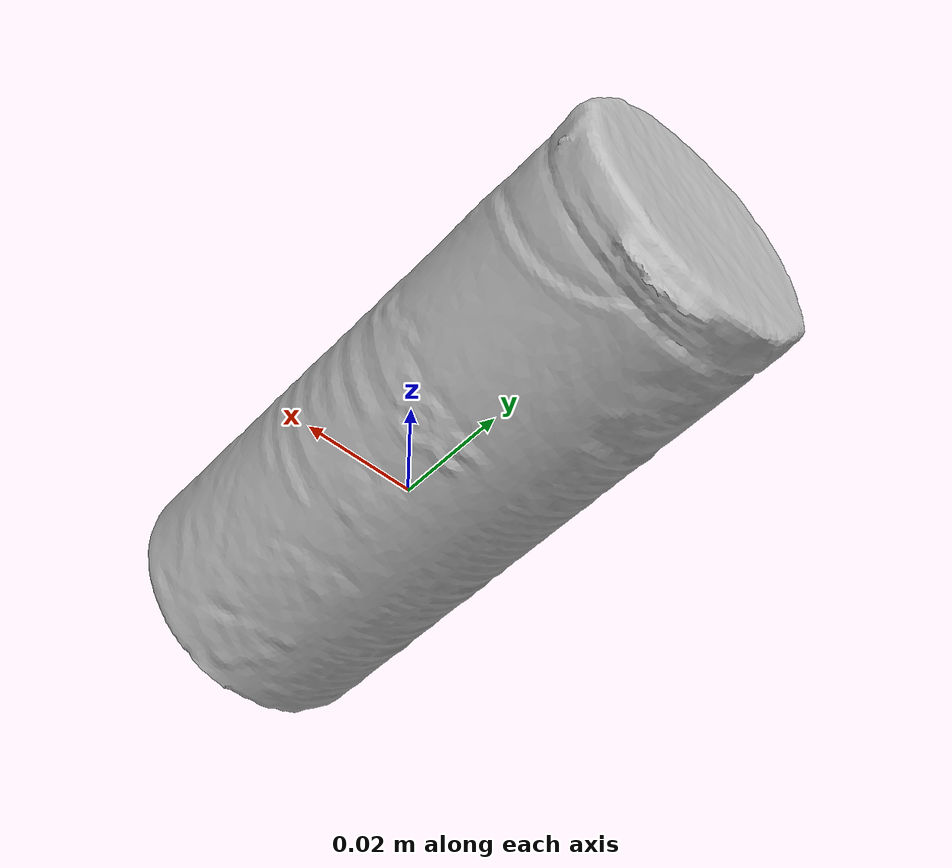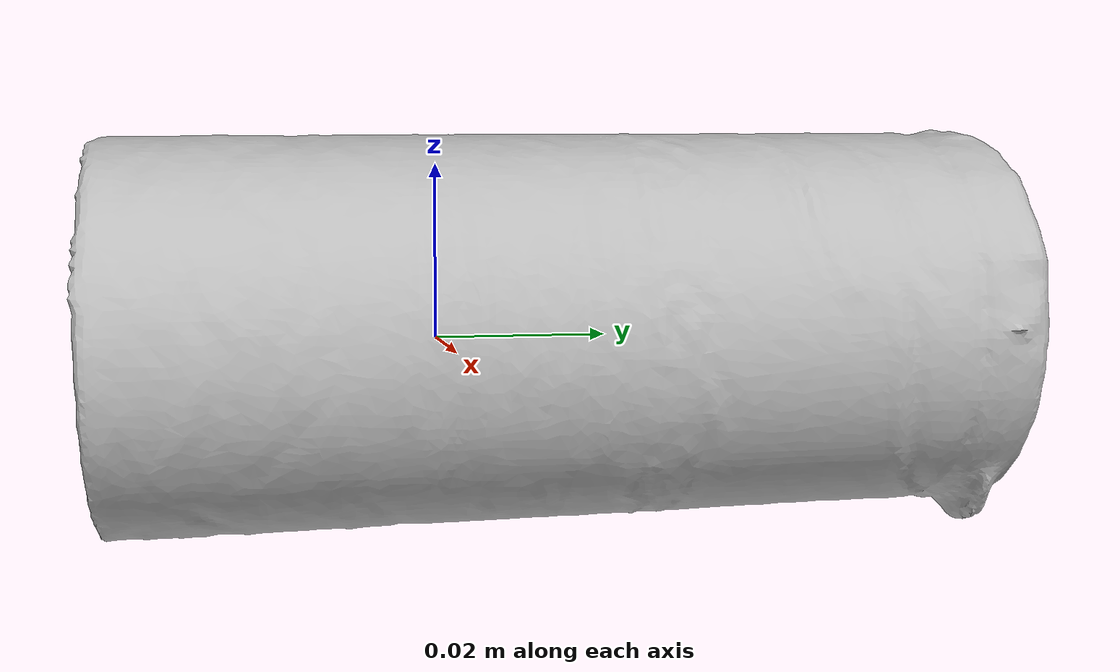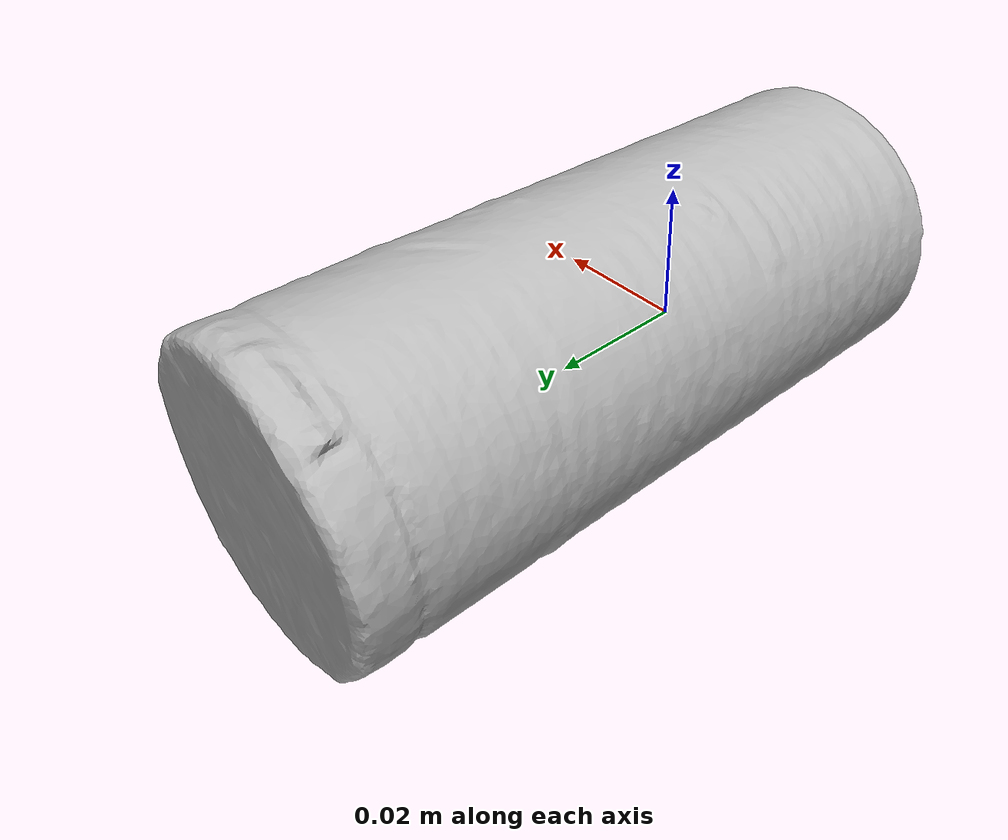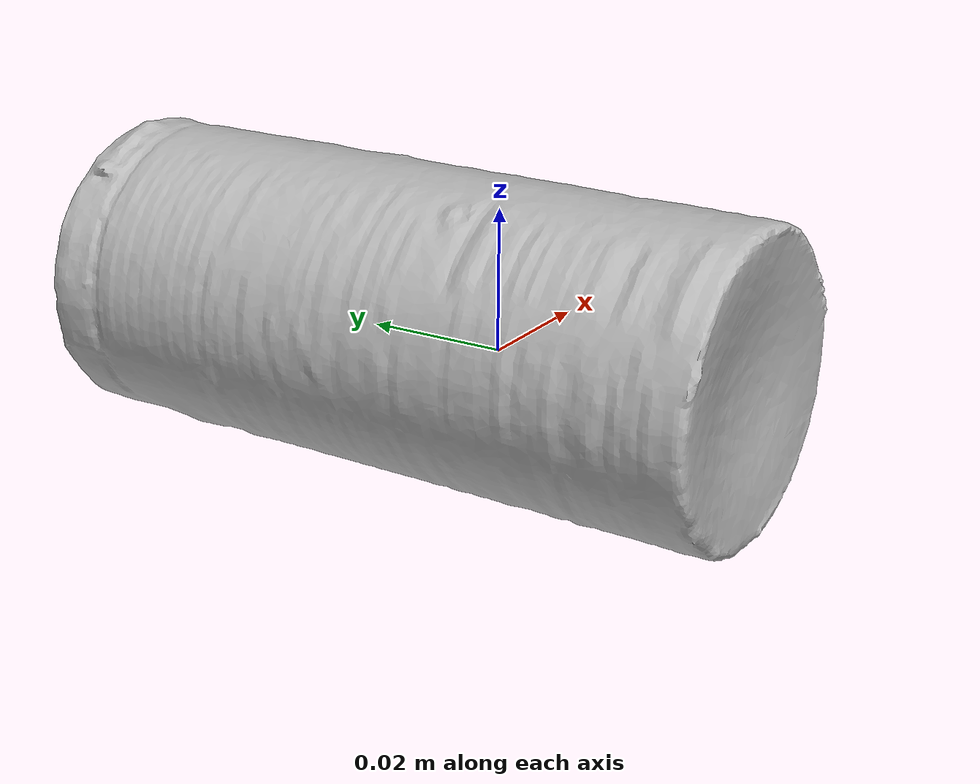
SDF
<?xml version='1.0'?>
<sdf version="1.4">
  <model name="HerbSalt">
    <static>false</static>
    <link name="link">
      <inertial>
        <pose>0.00263301029937612 0.013920888772368094 0.001121064115932798 -1.581095603584007 0.3942835156969961 3.135056988618202</pose>
        <mass>0.01596919610651148</mass>
        <inertia>
          <ixx>1.5837430325071347e-05</ixx>
          <ixy>-6.6966878450366285e-22</ixy>
          <ixz>1.6496716026231292e-21</ixz>
          <iyy>1.5713663286725942e-05</iyy>
          <iyz>4.462861378535516e-21</iyz>
          <izz>3.976844985006217e-06</izz>
        </inertia>
      </inertial>
      <collision name="collision">
        <geometry>
          <mesh>
            <!-- Use a downsampled mesh for collisions -->
            <uri>model:///HerbSalt/HerbSalt_250_collision.obj</uri>
	        </mesh>
        </geometry>
        <surface>
      </surface>
      </collision>
      <visual name="visual">
        <geometry>
          <mesh>
            <uri>model:///HerbSalt/HerbSalt_25k_tex.obj</uri>
	        </mesh>
        </geometry>
        <material>
          <script>
            <uri>model:///HerbSalt/HerbSalt.material</uri>
            <name>HerbSalt</name>
          </script>
        </material>
      </visual>
    </link>
  </model>
</sdf>
